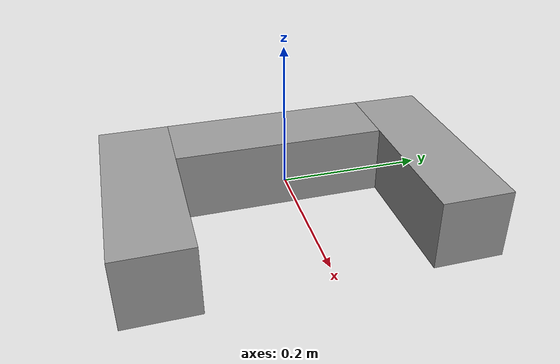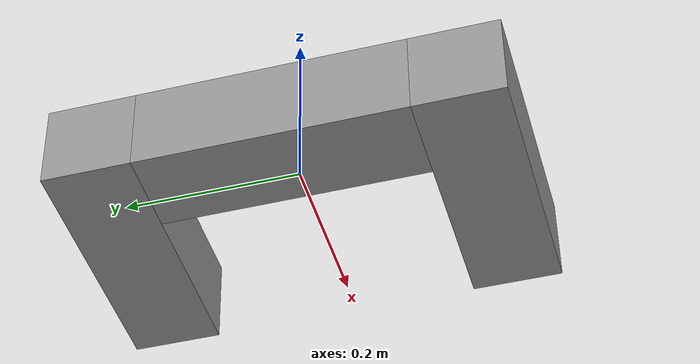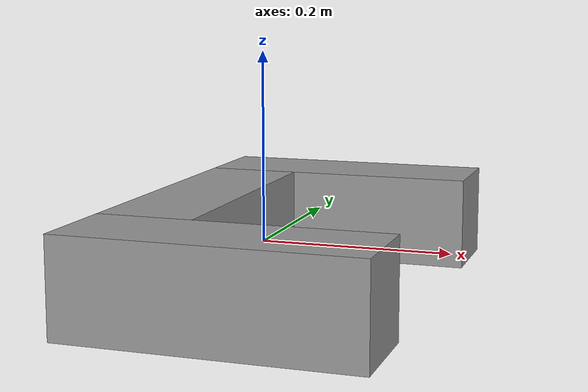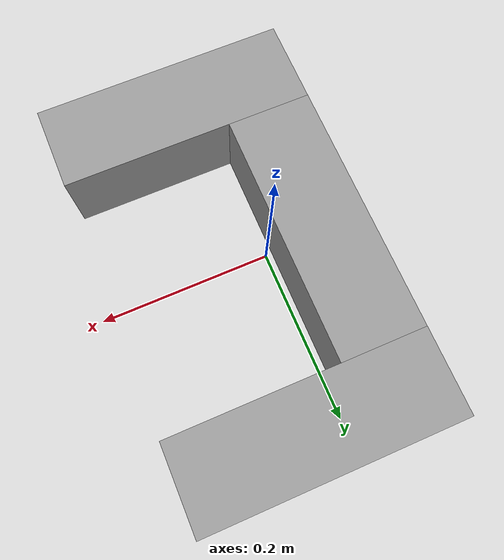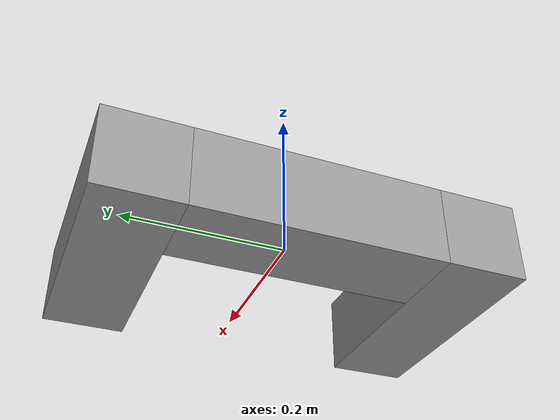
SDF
<?xml version='1.0'?>
<sdf version='1.6'>
  <model name='Shovel'>
    <link name='link_0_clone'>
      <inertial>
        <mass>0.116625</mass>
        <inertia>
          <ixx>0.00312424</ixx>
          <ixy>0</ixy>
          <ixz>0</ixz>
          <iyy>0.0123555</iyy>
          <iyz>0</iyz>
          <izz>0.0102061</izz>
        </inertia>
        <pose>0 0 0 0 -0 0</pose>
      </inertial>
      <pose>0.033333 -0.2 0 0 -0 0</pose>
      <gravity>1</gravity>
      <self_collide>0</self_collide>
      <kinematic>0</kinematic>
      <enable_wind>0</enable_wind>
      <visual name='visual'>
        <pose>0 0 0 0 -0 0</pose>
        <geometry>
          <box>
            <size>0.3 0.1 0.1</size>
          </box>
        </geometry>
        <material>
          <lighting>1</lighting>
          <script>
            <uri>file://media/materials/scripts/gazebo.material</uri>
            <name>Gazebo/Grey</name>
          </script>
          <shader type='pixel'>
            <normal_map>__default__</normal_map>
          </shader>
          <ambient>0.3 0.3 0.3 1</ambient>
          <diffuse>0.7 0.7 0.7 1</diffuse>
          <specular>0.01 0.01 0.01 1</specular>
          <emissive>0 0 0 1</emissive>
        </material>
        <transparency>0</transparency>
        <cast_shadows>1</cast_shadows>
      </visual>
      <collision name='collision'>
        <laser_retro>0</laser_retro>
        <max_contacts>10</max_contacts>
        <pose>0 0 0 0 -0 0</pose>
        <geometry>
          <box>
            <size>0.3 0.1 0.1</size>
          </box>
        </geometry>
        <surface>
          <friction>
            <ode>
              <mu>1</mu>
              <mu2>1</mu2>
              <fdir1>0 0 0</fdir1>
              <slip1>0</slip1>
              <slip2>0</slip2>
            </ode>
            <torsional>
              <coefficient>1</coefficient>
              <patch_radius>0</patch_radius>
              <surface_radius>0</surface_radius>
              <use_patch_radius>1</use_patch_radius>
              <ode>
                <slip>0</slip>
              </ode>
            </torsional>
          </friction>
          <bounce>
            <restitution_coefficient>0</restitution_coefficient>
            <threshold>1e+06</threshold>
          </bounce>
          <contact>
            <collide_without_contact>0</collide_without_contact>
            <collide_without_contact_bitmask>1</collide_without_contact_bitmask>
            <collide_bitmask>1</collide_bitmask>
            <ode>
              <soft_cfm>0</soft_cfm>
              <soft_erp>0.2</soft_erp>
              <kp>1e+13</kp>
              <kd>1</kd>
              <max_vel>0.01</max_vel>
              <min_depth>0</min_depth>
            </ode>
            <bullet>
              <split_impulse>1</split_impulse>
              <split_impulse_penetration_threshold>-0.01</split_impulse_penetration_threshold>
              <soft_cfm>0</soft_cfm>
              <soft_erp>0.2</soft_erp>
              <kp>1e+13</kp>
              <kd>1</kd>
            </bullet>
          </contact>
        </surface>
      </collision>
    </link>
    <link name='link_0_clone_clone'>
      <inertial>
        <mass>0.116625</mass>
        <inertia>
          <ixx>0.00312424</ixx>
          <ixy>0</ixy>
          <ixz>0</ixz>
          <iyy>0.0123555</iyy>
          <iyz>0</iyz>
          <izz>0.0102061</izz>
        </inertia>
        <pose>0 0 0 0 -0 0.707</pose>
      </inertial>
      <pose>-0.066667 0 0 0 -0 1.5708</pose>
      <gravity>1</gravity>
      <self_collide>0</self_collide>
      <kinematic>0</kinematic>
      <enable_wind>0</enable_wind>
      <visual name='visual'>
        <pose>0 0 0 0 -0 0</pose>
        <geometry>
          <box>
            <size>0.3 0.1 0.1</size>
          </box>
        </geometry>
        <material>
          <lighting>1</lighting>
          <script>
            <uri>file://media/materials/scripts/gazebo.material</uri>
            <name>Gazebo/Grey</name>
          </script>
          <shader type='pixel'>
            <normal_map>__default__</normal_map>
          </shader>
          <ambient>0.3 0.3 0.3 1</ambient>
          <diffuse>0.7 0.7 0.7 1</diffuse>
          <specular>0.01 0.01 0.01 1</specular>
          <emissive>0 0 0 1</emissive>
        </material>
        <transparency>0</transparency>
        <cast_shadows>1</cast_shadows>
      </visual>
      <collision name='collision'>
        <laser_retro>0</laser_retro>
        <max_contacts>10</max_contacts>
        <pose>0 0 0 0 -0 0</pose>
        <geometry>
          <box>
            <size>0.3 0.1 0.1</size>
          </box>
        </geometry>
        <surface>
          <friction>
            <ode>
              <mu>1</mu>
              <mu2>1</mu2>
              <fdir1>0 0 0</fdir1>
              <slip1>0</slip1>
              <slip2>0</slip2>
            </ode>
            <torsional>
              <coefficient>1</coefficient>
              <patch_radius>0</patch_radius>
              <surface_radius>0</surface_radius>
              <use_patch_radius>1</use_patch_radius>
              <ode>
                <slip>0</slip>
              </ode>
            </torsional>
          </friction>
          <bounce>
            <restitution_coefficient>0</restitution_coefficient>
            <threshold>1e+06</threshold>
          </bounce>
          <contact>
            <collide_without_contact>0</collide_without_contact>
            <collide_without_contact_bitmask>1</collide_without_contact_bitmask>
            <collide_bitmask>1</collide_bitmask>
            <ode>
              <soft_cfm>0</soft_cfm>
              <soft_erp>0.2</soft_erp>
              <kp>1e+13</kp>
              <kd>1</kd>
              <max_vel>0.01</max_vel>
              <min_depth>0</min_depth>
            </ode>
            <bullet>
              <split_impulse>1</split_impulse>
              <split_impulse_penetration_threshold>-0.01</split_impulse_penetration_threshold>
              <soft_cfm>0</soft_cfm>
              <soft_erp>0.2</soft_erp>
              <kp>1e+13</kp>
              <kd>1</kd>
            </bullet>
          </contact>
        </surface>
      </collision>
    </link>
    <link name='link_0_clone_clone_0'>
      <inertial>
        <mass>0.116625</mass>
        <inertia>
          <ixx>0.00312424</ixx>
          <ixy>0</ixy>
          <ixz>0</ixz>
          <iyy>0.0123555</iyy>
          <iyz>0</iyz>
          <izz>0.0102061</izz>
        </inertia>
        <pose>0 0 0 0 -0 0</pose>
      </inertial>
      <pose>0.033333 0.2 0 0 -0 0</pose>
      <gravity>1</gravity>
      <self_collide>0</self_collide>
      <kinematic>0</kinematic>
      <enable_wind>0</enable_wind>
      <visual name='visual'>
        <pose>0 0 0 0 -0 0</pose>
        <geometry>
          <box>
            <size>0.3 0.1 0.1</size>
          </box>
        </geometry>
        <material>
          <lighting>1</lighting>
          <script>
            <uri>file://media/materials/scripts/gazebo.material</uri>
            <name>Gazebo/Grey</name>
          </script>
          <shader type='pixel'>
            <normal_map>__default__</normal_map>
          </shader>
          <ambient>0.3 0.3 0.3 1</ambient>
          <diffuse>0.7 0.7 0.7 1</diffuse>
          <specular>0.01 0.01 0.01 1</specular>
          <emissive>0 0 0 1</emissive>
        </material>
        <transparency>0</transparency>
        <cast_shadows>1</cast_shadows>
      </visual>
      <collision name='collision'>
        <laser_retro>0</laser_retro>
        <max_contacts>10</max_contacts>
        <pose>0 0 0 0 -0 0</pose>
        <geometry>
          <box>
            <size>0.3 0.1 0.1</size>
          </box>
        </geometry>
        <surface>
          <friction>
            <ode>
              <mu>1</mu>
              <mu2>1</mu2>
              <fdir1>0 0 0</fdir1>
              <slip1>0</slip1>
              <slip2>0</slip2>
            </ode>
            <torsional>
              <coefficient>1</coefficient>
              <patch_radius>0</patch_radius>
              <surface_radius>0</surface_radius>
              <use_patch_radius>1</use_patch_radius>
              <ode>
                <slip>0</slip>
              </ode>
            </torsional>
          </friction>
          <bounce>
            <restitution_coefficient>0</restitution_coefficient>
            <threshold>1e+06</threshold>
          </bounce>
          <contact>
            <collide_without_contact>0</collide_without_contact>
            <collide_without_contact_bitmask>1</collide_without_contact_bitmask>
            <collide_bitmask>1</collide_bitmask>
            <ode>
              <soft_cfm>0</soft_cfm>
              <soft_erp>0.2</soft_erp>
              <kp>1e+13</kp>
              <kd>1</kd>
              <max_vel>0.01</max_vel>
              <min_depth>0</min_depth>
            </ode>
            <bullet>
              <split_impulse>1</split_impulse>
              <split_impulse_penetration_threshold>-0.01</split_impulse_penetration_threshold>
              <soft_cfm>0</soft_cfm>
              <soft_erp>0.2</soft_erp>
              <kp>1e+13</kp>
              <kd>1</kd>
            </bullet>
          </contact>
        </surface>
      </collision>
    </link>
    <joint name='link_0_clone_clone_JOINT_0' type='fixed'>
      <parent>link_0_clone_clone</parent>
      <child>link_0_clone</child>
      <pose>0 0 0 0 -0 0</pose>
      <physics>
        <ode>
          <limit>
            <cfm>0</cfm>
            <erp>0.2</erp>
          </limit>
          <suspension>
            <cfm>0</cfm>
            <erp>0.2</erp>
          </suspension>
        </ode>
      </physics>
    </joint>
    <joint name='link_0_clone_clone_JOINT_1' type='fixed'>
      <parent>link_0_clone_clone</parent>
      <child>link_0_clone_clone_0</child>
      <pose>0 0 0 0 -0 0</pose>
      <physics>
        <ode>
          <limit>
            <cfm>0</cfm>
            <erp>0.2</erp>
          </limit>
          <suspension>
            <cfm>0</cfm>
            <erp>0.2</erp>
          </suspension>
        </ode>
      </physics>
    </joint>
    <static>0</static>
    <allow_auto_disable>1</allow_auto_disable>
  </model>
</sdf>
